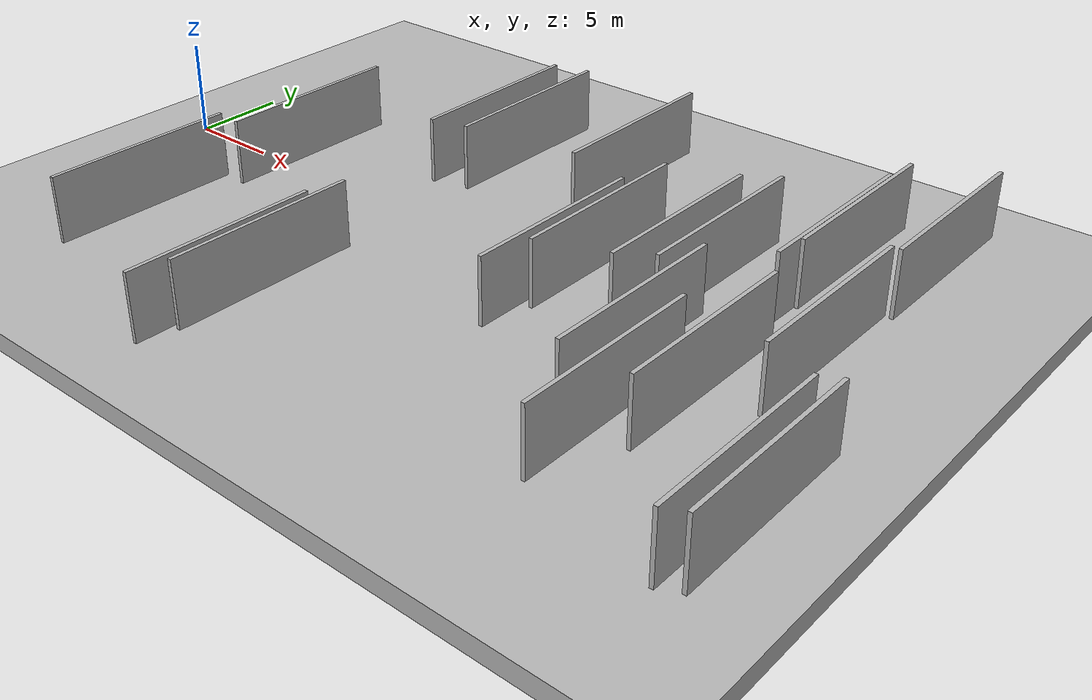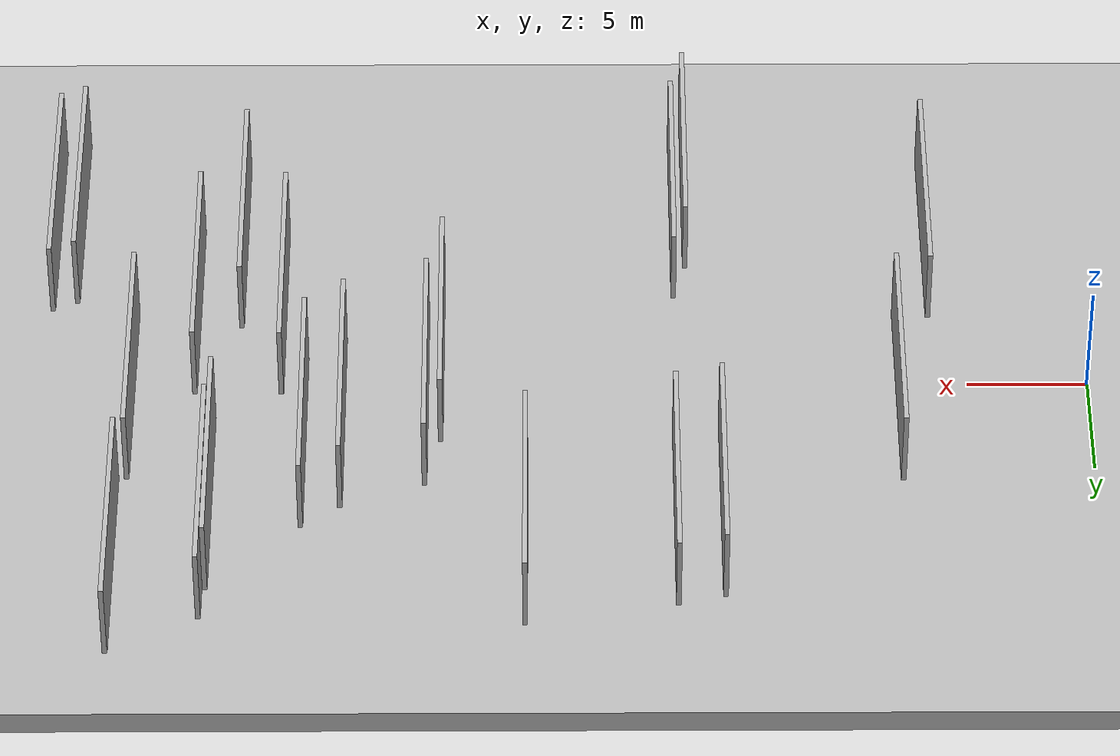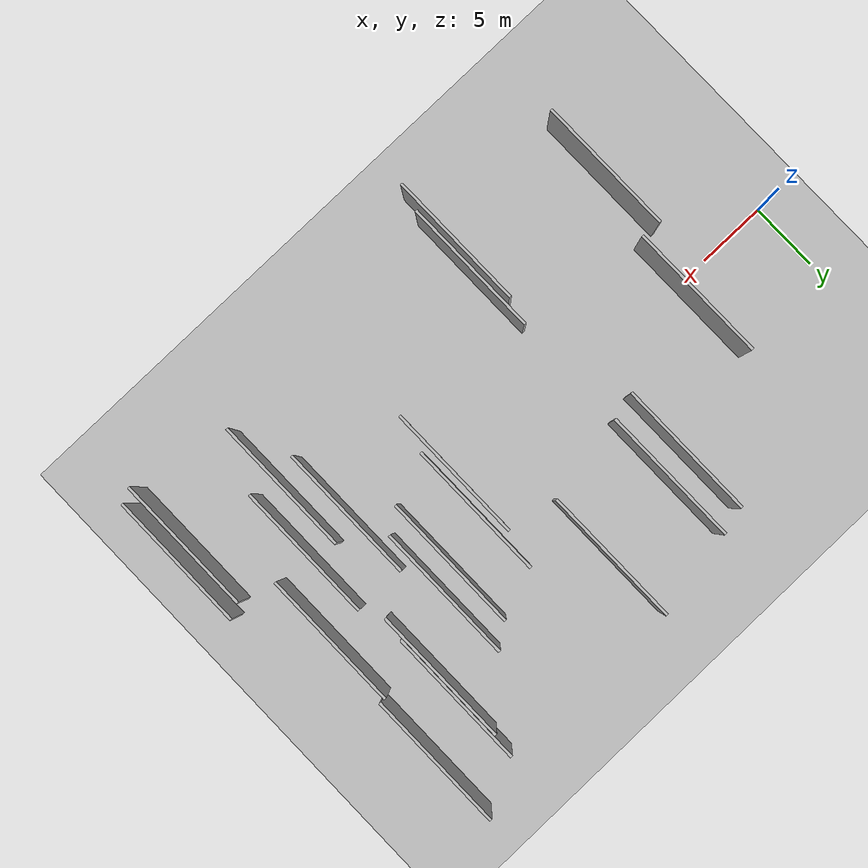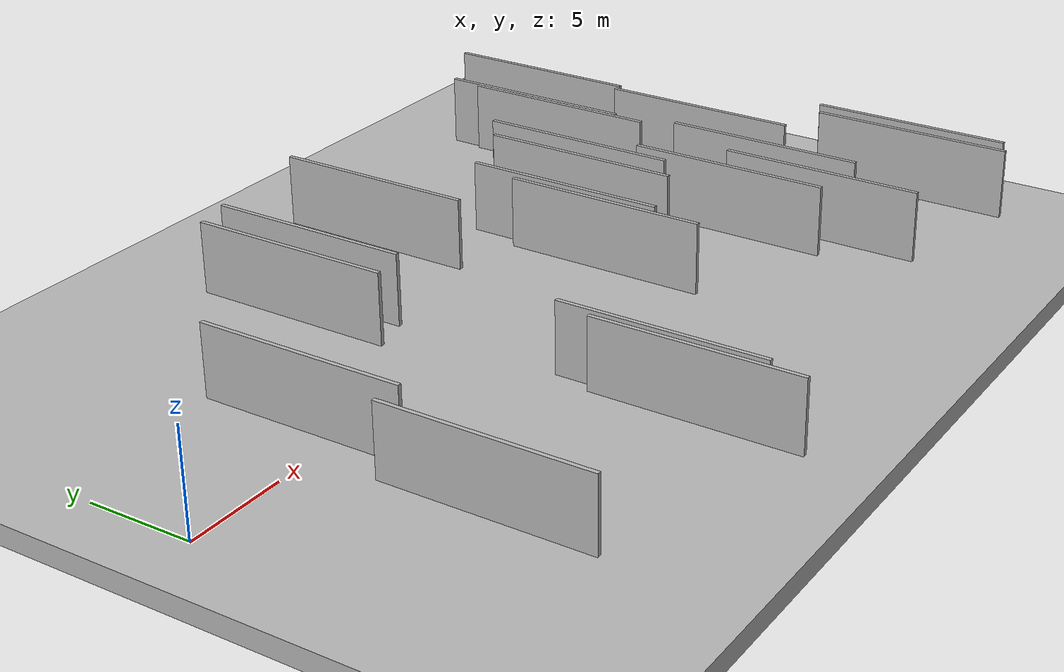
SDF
<?xml version="1.0" encoding="utf-8"?>

<sdf version="1.6">

   <world name="default">

      <gui fullscreen="0">

         <camera name="user_camera">

            <pose>-15 0 4.57585 0 0 0</pose>

            <view_controller>orbit</view_controller>

         </camera>

      </gui>

      <scene>

         <sky>

           <clouds>

             <speed>12</speed>

           </clouds>

         </sky>

         <ambient>0.4 0.4 0.4 1</ambient>

         <background>0.7 0.7 0.7 1</background>

         <shadows>1</shadows>

      </scene>

      <gravity>0 0 -9.8066</gravity>

      <magnetic_field>6e-06 2.3e-05 -4.2e-05</magnetic_field>

      <physics default="0" name="default_physics" type="ode">

         <ode>

            <solver>

               <type>quick</type>

               <iters>10</iters>

               <sor>1.0</sor>

               <use_dynamic_moi_rescaling>0</use_dynamic_moi_rescaling>

            </solver>

            <constraints>

               <cfm>0</cfm>

               <erp>0.2</erp>

               <contact_max_correcting_vel>100</contact_max_correcting_vel>

               <contact_surface_layer>0.001</contact_surface_layer>

            </constraints>

         </ode>

         <max_step_size>0.004</max_step_size>

         <real_time_factor>1</real_time_factor>

         <real_time_update_rate>250</real_time_update_rate>

      </physics>

      <light name="sun" type="directional">

         <cast_shadows>1</cast_shadows>

         <pose>0 0 10 0 0 0</pose>

         <diffuse>0.8 0.8 0.8 1</diffuse>

         <specular>0.2 0.2 0.2 1</specular>

         <attenuation>

            <range>1000</range>

            <constant>0.9</constant>

            <linear>0.01</linear>

            <quadratic>0.001</quadratic>

         </attenuation>

         <direction>-0.5 0.1 -0.9</direction>

      </light>

      <include>

         <name>ground_plane_1</name>

         <uri>model://HANNAS_ground_plane</uri>

         <pose>0 0 0  0 0 0</pose>

      </include>

      <include>

         <name>ground_plane_2</name>

         <uri>model://HANNAS_ground_plane</uri>

         <pose>100 0 0  0 0 0</pose>

      </include>

      <model name="HANNAS_wall_1">

         <static>1</static>

         <pose frame="">23.4221 9.4589 0.0 0.000000 0.000000 1.570796</pose>

         <link name="link">

            <pose frame="">0 0 2.00 0 0 0</pose>

            <collision name="collision">

               <geometry>

                  <box>

                     <size>10.00 0.2 4.00</size>

                  </box>

               </geometry>

               <max_contacts>10</max_contacts>

               <surface>

                  <contact>

                     <ode/>

                  </contact>

                  <bounce/>

                  <friction>

                     <torsional>

                        <ode/>

                     </torsional>

                     <ode/>

                  </friction>

               </surface>

            </collision>

            <visual name="visual">

               <cast_shadows>0</cast_shadows>

               <geometry>

                  <box>

                     <size>10.00 0.2 4.00</size>

                  </box>

               </geometry>

               <material>

                  <script>

                     <uri>model://HANNAS_wall/materials/scripts</uri>

                     <uri>model://HANNAS_wall/materials/textures</uri>

                     <name>vrc/HANNAS_wall</name>

                  </script>

               </material>

            </visual>

            <self_collide>0</self_collide>

            <enable_wind>0</enable_wind>

            <kinematic>0</kinematic>

         </link>

      </model>

      <model name="HANNAS_wall_2">

         <static>1</static>

         <pose frame="">32.5630 3.8398 0.0 0.000000 0.000000 1.570796</pose>

         <link name="link">

            <pose frame="">0 0 2.00 0 0 0</pose>

            <collision name="collision">

               <geometry>

                  <box>

                     <size>10.00 0.2 4.00</size>

                  </box>

               </geometry>

               <max_contacts>10</max_contacts>

               <surface>

                  <contact>

                     <ode/>

                  </contact>

                  <bounce/>

                  <friction>

                     <torsional>

                        <ode/>

                     </torsional>

                     <ode/>

                  </friction>

               </surface>

            </collision>

            <visual name="visual">

               <cast_shadows>0</cast_shadows>

               <geometry>

                  <box>

                     <size>10.00 0.2 4.00</size>

                  </box>

               </geometry>

               <material>

                  <script>

                     <uri>model://HANNAS_wall/materials/scripts</uri>

                     <uri>model://HANNAS_wall/materials/textures</uri>

                     <name>vrc/HANNAS_wall</name>

                  </script>

               </material>

            </visual>

            <self_collide>0</self_collide>

            <enable_wind>0</enable_wind>

            <kinematic>0</kinematic>

         </link>

      </model>

      <model name="HANNAS_wall_3">

         <static>1</static>

         <pose frame="">36.3139 7.4052 0.0 0.000000 0.000000 1.570796</pose>

         <link name="link">

            <pose frame="">0 0 2.00 0 0 0</pose>

            <collision name="collision">

               <geometry>

                  <box>

                     <size>10.00 0.2 4.00</size>

                  </box>

               </geometry>

               <max_contacts>10</max_contacts>

               <surface>

                  <contact>

                     <ode/>

                  </contact>

                  <bounce/>

                  <friction>

                     <torsional>

                        <ode/>

                     </torsional>

                     <ode/>

                  </friction>

               </surface>

            </collision>

            <visual name="visual">

               <cast_shadows>0</cast_shadows>

               <geometry>

                  <box>

                     <size>10.00 0.2 4.00</size>

                  </box>

               </geometry>

               <material>

                  <script>

                     <uri>model://HANNAS_wall/materials/scripts</uri>

                     <uri>model://HANNAS_wall/materials/textures</uri>

                     <name>vrc/HANNAS_wall</name>

                  </script>

               </material>

            </visual>

            <self_collide>0</self_collide>

            <enable_wind>0</enable_wind>

            <kinematic>0</kinematic>

         </link>

      </model>

      <model name="HANNAS_wall_4">

         <static>1</static>

         <pose frame="">16.6727 -11.7709 0.0 0.000000 0.000000 1.570796</pose>

         <link name="link">

            <pose frame="">0 0 2.00 0 0 0</pose>

            <collision name="collision">

               <geometry>

                  <box>

                     <size>10.00 0.2 4.00</size>

                  </box>

               </geometry>

               <max_contacts>10</max_contacts>

               <surface>

                  <contact>

                     <ode/>

                  </contact>

                  <bounce/>

                  <friction>

                     <torsional>

                        <ode/>

                     </torsional>

                     <ode/>

                  </friction>

               </surface>

            </collision>

            <visual name="visual">

               <cast_shadows>0</cast_shadows>

               <geometry>

                  <box>

                     <size>10.00 0.2 4.00</size>

                  </box>

               </geometry>

               <material>

                  <script>

                     <uri>model://HANNAS_wall/materials/scripts</uri>

                     <uri>model://HANNAS_wall/materials/textures</uri>

                     <name>vrc/HANNAS_wall</name>

                  </script>

               </material>

            </visual>

            <self_collide>0</self_collide>

            <enable_wind>0</enable_wind>

            <kinematic>0</kinematic>

         </link>

      </model>

      <model name="HANNAS_wall_5">

         <static>1</static>

         <pose frame="">42.3125 -9.6594 0.0 0.000000 0.000000 1.570796</pose>

         <link name="link">

            <pose frame="">0 0 2.00 0 0 0</pose>

            <collision name="collision">

               <geometry>

                  <box>

                     <size>10.00 0.2 4.00</size>

                  </box>

               </geometry>

               <max_contacts>10</max_contacts>

               <surface>

                  <contact>

                     <ode/>

                  </contact>

                  <bounce/>

                  <friction>

                     <torsional>

                        <ode/>

                     </torsional>

                     <ode/>

                  </friction>

               </surface>

            </collision>

            <visual name="visual">

               <cast_shadows>0</cast_shadows>

               <geometry>

                  <box>

                     <size>10.00 0.2 4.00</size>

                  </box>

               </geometry>

               <material>

                  <script>

                     <uri>model://HANNAS_wall/materials/scripts</uri>

                     <uri>model://HANNAS_wall/materials/textures</uri>

                     <name>vrc/HANNAS_wall</name>

                  </script>

               </material>

            </visual>

            <self_collide>0</self_collide>

            <enable_wind>0</enable_wind>

            <kinematic>0</kinematic>

         </link>

      </model>

      <model name="HANNAS_wall_6">

         <static>1</static>

         <pose frame="">40.1657 10.9871 0.0 0.000000 0.000000 1.570796</pose>

         <link name="link">

            <pose frame="">0 0 2.00 0 0 0</pose>

            <collision name="collision">

               <geometry>

                  <box>

                     <size>10.00 0.2 4.00</size>

                  </box>

               </geometry>

               <max_contacts>10</max_contacts>

               <surface>

                  <contact>

                     <ode/>

                  </contact>

                  <bounce/>

                  <friction>

                     <torsional>

                        <ode/>

                     </torsional>

                     <ode/>

                  </friction>

               </surface>

            </collision>

            <visual name="visual">

               <cast_shadows>0</cast_shadows>

               <geometry>

                  <box>

                     <size>10.00 0.2 4.00</size>

                  </box>

               </geometry>

               <material>

                  <script>

                     <uri>model://HANNAS_wall/materials/scripts</uri>

                     <uri>model://HANNAS_wall/materials/textures</uri>

                     <name>vrc/HANNAS_wall</name>

                  </script>

               </material>

            </visual>

            <self_collide>0</self_collide>

            <enable_wind>0</enable_wind>

            <kinematic>0</kinematic>

         </link>

      </model>

      <model name="HANNAS_wall_7">

         <static>1</static>

         <pose frame="">26.9151 -1.1675 0.0 0.000000 0.000000 1.570796</pose>

         <link name="link">

            <pose frame="">0 0 2.00 0 0 0</pose>

            <collision name="collision">

               <geometry>

                  <box>

                     <size>10.00 0.2 4.00</size>

                  </box>

               </geometry>

               <max_contacts>10</max_contacts>

               <surface>

                  <contact>

                     <ode/>

                  </contact>

                  <bounce/>

                  <friction>

                     <torsional>

                        <ode/>

                     </torsional>

                     <ode/>

                  </friction>

               </surface>

            </collision>

            <visual name="visual">

               <cast_shadows>0</cast_shadows>

               <geometry>

                  <box>

                     <size>10.00 0.2 4.00</size>

                  </box>

               </geometry>

               <material>

                  <script>

                     <uri>model://HANNAS_wall/materials/scripts</uri>

                     <uri>model://HANNAS_wall/materials/textures</uri>

                     <name>vrc/HANNAS_wall</name>

                  </script>

               </material>

            </visual>

            <self_collide>0</self_collide>

            <enable_wind>0</enable_wind>

            <kinematic>0</kinematic>

         </link>

      </model>

      <model name="HANNAS_wall_8">

         <static>1</static>

         <pose frame="">17.1875 -9.8897 0.0 0.000000 0.000000 1.570796</pose>

         <link name="link">

            <pose frame="">0 0 2.00 0 0 0</pose>

            <collision name="collision">

               <geometry>

                  <box>

                     <size>10.00 0.2 4.00</size>

                  </box>

               </geometry>

               <max_contacts>10</max_contacts>

               <surface>

                  <contact>

                     <ode/>

                  </contact>

                  <bounce/>

                  <friction>

                     <torsional>

                        <ode/>

                     </torsional>

                     <ode/>

                  </friction>

               </surface>

            </collision>

            <visual name="visual">

               <cast_shadows>0</cast_shadows>

               <geometry>

                  <box>

                     <size>10.00 0.2 4.00</size>

                  </box>

               </geometry>

               <material>

                  <script>

                     <uri>model://HANNAS_wall/materials/scripts</uri>

                     <uri>model://HANNAS_wall/materials/textures</uri>

                     <name>vrc/HANNAS_wall</name>

                  </script>

               </material>

            </visual>

            <self_collide>0</self_collide>

            <enable_wind>0</enable_wind>

            <kinematic>0</kinematic>

         </link>

      </model>

      <model name="HANNAS_wall_9">

         <static>1</static>

         <pose frame="">17.2578 8.3509 0.0 0.000000 0.000000 1.570796</pose>

         <link name="link">

            <pose frame="">0 0 2.00 0 0 0</pose>

            <collision name="collision">

               <geometry>

                  <box>

                     <size>10.00 0.2 4.00</size>

                  </box>

               </geometry>

               <max_contacts>10</max_contacts>

               <surface>

                  <contact>

                     <ode/>

                  </contact>

                  <bounce/>

                  <friction>

                     <torsional>

                        <ode/>

                     </torsional>

                     <ode/>

                  </friction>

               </surface>

            </collision>

            <visual name="visual">

               <cast_shadows>0</cast_shadows>

               <geometry>

                  <box>

                     <size>10.00 0.2 4.00</size>

                  </box>

               </geometry>

               <material>

                  <script>

                     <uri>model://HANNAS_wall/materials/scripts</uri>

                     <uri>model://HANNAS_wall/materials/textures</uri>

                     <name>vrc/HANNAS_wall</name>

                  </script>

               </material>

            </visual>

            <self_collide>0</self_collide>

            <enable_wind>0</enable_wind>

            <kinematic>0</kinematic>

         </link>

      </model>

      <model name="HANNAS_wall_10">

         <static>1</static>

         <pose frame="">6.5091 -8.6420 0.0 0.000000 0.000000 1.570796</pose>

         <link name="link">

            <pose frame="">0 0 2.00 0 0 0</pose>

            <collision name="collision">

               <geometry>

                  <box>

                     <size>10.00 0.2 4.00</size>

                  </box>

               </geometry>

               <max_contacts>10</max_contacts>

               <surface>

                  <contact>

                     <ode/>

                  </contact>

                  <bounce/>

                  <friction>

                     <torsional>

                        <ode/>

                     </torsional>

                     <ode/>

                  </friction>

               </surface>

            </collision>

            <visual name="visual">

               <cast_shadows>0</cast_shadows>

               <geometry>

                  <box>

                     <size>10.00 0.2 4.00</size>

                  </box>

               </geometry>

               <material>

                  <script>

                     <uri>model://HANNAS_wall/materials/scripts</uri>

                     <uri>model://HANNAS_wall/materials/textures</uri>

                     <name>vrc/HANNAS_wall</name>

                  </script>

               </material>

            </visual>

            <self_collide>0</self_collide>

            <enable_wind>0</enable_wind>

            <kinematic>0</kinematic>

         </link>

      </model>

      <model name="HANNAS_wall_11">

         <static>1</static>

         <pose frame="">15.3530 7.8726 0.0 0.000000 0.000000 1.570796</pose>

         <link name="link">

            <pose frame="">0 0 2.00 0 0 0</pose>

            <collision name="collision">

               <geometry>

                  <box>

                     <size>10.00 0.2 4.00</size>

                  </box>

               </geometry>

               <max_contacts>10</max_contacts>

               <surface>

                  <contact>

                     <ode/>

                  </contact>

                  <bounce/>

                  <friction>

                     <torsional>

                        <ode/>

                     </torsional>

                     <ode/>

                  </friction>

               </surface>

            </collision>

            <visual name="visual">

               <cast_shadows>0</cast_shadows>

               <geometry>

                  <box>

                     <size>10.00 0.2 4.00</size>

                  </box>

               </geometry>

               <material>

                  <script>

                     <uri>model://HANNAS_wall/materials/scripts</uri>

                     <uri>model://HANNAS_wall/materials/textures</uri>

                     <name>vrc/HANNAS_wall</name>

                  </script>

               </material>

            </visual>

            <self_collide>0</self_collide>

            <enable_wind>0</enable_wind>

            <kinematic>0</kinematic>

         </link>

      </model>

      <model name="HANNAS_wall_12">

         <static>1</static>

         <pose frame="">36.5261 9.0581 0.0 0.000000 0.000000 1.570796</pose>

         <link name="link">

            <pose frame="">0 0 2.00 0 0 0</pose>

            <collision name="collision">

               <geometry>

                  <box>

                     <size>10.00 0.2 4.00</size>

                  </box>

               </geometry>

               <max_contacts>10</max_contacts>

               <surface>

                  <contact>

                     <ode/>

                  </contact>

                  <bounce/>

                  <friction>

                     <torsional>

                        <ode/>

                     </torsional>

                     <ode/>

                  </friction>

               </surface>

            </collision>

            <visual name="visual">

               <cast_shadows>0</cast_shadows>

               <geometry>

                  <box>

                     <size>10.00 0.2 4.00</size>

                  </box>

               </geometry>

               <material>

                  <script>

                     <uri>model://HANNAS_wall/materials/scripts</uri>

                     <uri>model://HANNAS_wall/materials/textures</uri>

                     <name>vrc/HANNAS_wall</name>

                  </script>

               </material>

            </visual>

            <self_collide>0</self_collide>

            <enable_wind>0</enable_wind>

            <kinematic>0</kinematic>

         </link>

      </model>

      <model name="HANNAS_wall_13">

         <static>1</static>

         <pose frame="">27.5452 1.4275 0.0 0.000000 0.000000 1.570796</pose>

         <link name="link">

            <pose frame="">0 0 2.00 0 0 0</pose>

            <collision name="collision">

               <geometry>

                  <box>

                     <size>10.00 0.2 4.00</size>

                  </box>

               </geometry>

               <max_contacts>10</max_contacts>

               <surface>

                  <contact>

                     <ode/>

                  </contact>

                  <bounce/>

                  <friction>

                     <torsional>

                        <ode/>

                     </torsional>

                     <ode/>

                  </friction>

               </surface>

            </collision>

            <visual name="visual">

               <cast_shadows>0</cast_shadows>

               <geometry>

                  <box>

                     <size>10.00 0.2 4.00</size>

                  </box>

               </geometry>

               <material>

                  <script>

                     <uri>model://HANNAS_wall/materials/scripts</uri>

                     <uri>model://HANNAS_wall/materials/textures</uri>

                     <name>vrc/HANNAS_wall</name>

                  </script>

               </material>

            </visual>

            <self_collide>0</self_collide>

            <enable_wind>0</enable_wind>

            <kinematic>0</kinematic>

         </link>

      </model>

      <model name="HANNAS_wall_14">

         <static>1</static>

         <pose frame="">33.5602 -4.0290 0.0 0.000000 0.000000 1.570796</pose>

         <link name="link">

            <pose frame="">0 0 2.00 0 0 0</pose>

            <collision name="collision">

               <geometry>

                  <box>

                     <size>10.00 0.2 4.00</size>

                  </box>

               </geometry>

               <max_contacts>10</max_contacts>

               <surface>

                  <contact>

                     <ode/>

                  </contact>

                  <bounce/>

                  <friction>

                     <torsional>

                        <ode/>

                     </torsional>

                     <ode/>

                  </friction>

               </surface>

            </collision>

            <visual name="visual">

               <cast_shadows>0</cast_shadows>

               <geometry>

                  <box>

                     <size>10.00 0.2 4.00</size>

                  </box>

               </geometry>

               <material>

                  <script>

                     <uri>model://HANNAS_wall/materials/scripts</uri>

                     <uri>model://HANNAS_wall/materials/textures</uri>

                     <name>vrc/HANNAS_wall</name>

                  </script>

               </material>

            </visual>

            <self_collide>0</self_collide>

            <enable_wind>0</enable_wind>

            <kinematic>0</kinematic>

         </link>

      </model>

      <model name="HANNAS_wall_15">

         <static>1</static>

         <pose frame="">43.3201 -9.1807 0.0 0.000000 0.000000 1.570796</pose>

         <link name="link">

            <pose frame="">0 0 2.00 0 0 0</pose>

            <collision name="collision">

               <geometry>

                  <box>

                     <size>10.00 0.2 4.00</size>

                  </box>

               </geometry>

               <max_contacts>10</max_contacts>

               <surface>

                  <contact>

                     <ode/>

                  </contact>

                  <bounce/>

                  <friction>

                     <torsional>

                        <ode/>

                     </torsional>

                     <ode/>

                  </friction>

               </surface>

            </collision>

            <visual name="visual">

               <cast_shadows>0</cast_shadows>

               <geometry>

                  <box>

                     <size>10.00 0.2 4.00</size>

                  </box>

               </geometry>

               <material>

                  <script>

                     <uri>model://HANNAS_wall/materials/scripts</uri>

                     <uri>model://HANNAS_wall/materials/textures</uri>

                     <name>vrc/HANNAS_wall</name>

                  </script>

               </material>

            </visual>

            <self_collide>0</self_collide>

            <enable_wind>0</enable_wind>

            <kinematic>0</kinematic>

         </link>

      </model>

      <model name="HANNAS_wall_16">

         <static>1</static>

         <pose frame="">37.1514 -4.0819 0.0 0.000000 0.000000 1.570796</pose>

         <link name="link">

            <pose frame="">0 0 2.00 0 0 0</pose>

            <collision name="collision">

               <geometry>

                  <box>

                     <size>10.00 0.2 4.00</size>

                  </box>

               </geometry>

               <max_contacts>10</max_contacts>

               <surface>

                  <contact>

                     <ode/>

                  </contact>

                  <bounce/>

                  <friction>

                     <torsional>

                        <ode/>

                     </torsional>

                     <ode/>

                  </friction>

               </surface>

            </collision>

            <visual name="visual">

               <cast_shadows>0</cast_shadows>

               <geometry>

                  <box>

                     <size>10.00 0.2 4.00</size>

                  </box>

               </geometry>

               <material>

                  <script>

                     <uri>model://HANNAS_wall/materials/scripts</uri>

                     <uri>model://HANNAS_wall/materials/textures</uri>

                     <name>vrc/HANNAS_wall</name>

                  </script>

               </material>

            </visual>

            <self_collide>0</self_collide>

            <enable_wind>0</enable_wind>

            <kinematic>0</kinematic>

         </link>

      </model>

      <model name="HANNAS_wall_17">

         <static>1</static>

         <pose frame="">7.9268 1.1882 0.0 0.000000 0.000000 1.570796</pose>

         <link name="link">

            <pose frame="">0 0 2.00 0 0 0</pose>

            <collision name="collision">

               <geometry>

                  <box>

                     <size>10.00 0.2 4.00</size>

                  </box>

               </geometry>

               <max_contacts>10</max_contacts>

               <surface>

                  <contact>

                     <ode/>

                  </contact>

                  <bounce/>

                  <friction>

                     <torsional>

                        <ode/>

                     </torsional>

                     <ode/>

                  </friction>

               </surface>

            </collision>

            <visual name="visual">

               <cast_shadows>0</cast_shadows>

               <geometry>

                  <box>

                     <size>10.00 0.2 4.00</size>

                  </box>

               </geometry>

               <material>

                  <script>

                     <uri>model://HANNAS_wall/materials/scripts</uri>

                     <uri>model://HANNAS_wall/materials/textures</uri>

                     <name>vrc/HANNAS_wall</name>

                  </script>

               </material>

            </visual>

            <self_collide>0</self_collide>

            <enable_wind>0</enable_wind>

            <kinematic>0</kinematic>

         </link>

      </model>

      <model name="HANNAS_wall_18">

         <static>1</static>

         <pose frame="">30.9820 2.7147 0.0 0.000000 0.000000 1.570796</pose>

         <link name="link">

            <pose frame="">0 0 2.00 0 0 0</pose>

            <collision name="collision">

               <geometry>

                  <box>

                     <size>10.00 0.2 4.00</size>

                  </box>

               </geometry>

               <max_contacts>10</max_contacts>

               <surface>

                  <contact>

                     <ode/>

                  </contact>

                  <bounce/>

                  <friction>

                     <torsional>

                        <ode/>

                     </torsional>

                     <ode/>

                  </friction>

               </surface>

            </collision>

            <visual name="visual">

               <cast_shadows>0</cast_shadows>

               <geometry>

                  <box>

                     <size>10.00 0.2 4.00</size>

                  </box>

               </geometry>

               <material>

                  <script>

                     <uri>model://HANNAS_wall/materials/scripts</uri>

                     <uri>model://HANNAS_wall/materials/textures</uri>

                     <name>vrc/HANNAS_wall</name>

                  </script>

               </material>

            </visual>

            <self_collide>0</self_collide>

            <enable_wind>0</enable_wind>

            <kinematic>0</kinematic>

         </link>

      </model>

      <model name="HANNAS_wall_19">

         <static>1</static>

         <pose frame="">35.3307 -8.0970 0.0 0.000000 0.000000 1.570796</pose>

         <link name="link">

            <pose frame="">0 0 2.00 0 0 0</pose>

            <collision name="collision">

               <geometry>

                  <box>

                     <size>10.00 0.2 4.00</size>

                  </box>

               </geometry>

               <max_contacts>10</max_contacts>

               <surface>

                  <contact>

                     <ode/>

                  </contact>

                  <bounce/>

                  <friction>

                     <torsional>

                        <ode/>

                     </torsional>

                     <ode/>

                  </friction>

               </surface>

            </collision>

            <visual name="visual">

               <cast_shadows>0</cast_shadows>

               <geometry>

                  <box>

                     <size>10.00 0.2 4.00</size>

                  </box>

               </geometry>

               <material>

                  <script>

                     <uri>model://HANNAS_wall/materials/scripts</uri>

                     <uri>model://HANNAS_wall/materials/textures</uri>

                     <name>vrc/HANNAS_wall</name>

                  </script>

               </material>

            </visual>

            <self_collide>0</self_collide>

            <enable_wind>0</enable_wind>

            <kinematic>0</kinematic>

         </link>

      </model>

      <model name="HANNAS_wall_20">

         <static>1</static>

         <pose frame="">39.7499 1.0247 0.0 0.000000 0.000000 1.570796</pose>

         <link name="link">

            <pose frame="">0 0 2.00 0 0 0</pose>

            <collision name="collision">

               <geometry>

                  <box>

                     <size>10.00 0.2 4.00</size>

                  </box>

               </geometry>

               <max_contacts>10</max_contacts>

               <surface>

                  <contact>

                     <ode/>

                  </contact>

                  <bounce/>

                  <friction>

                     <torsional>

                        <ode/>

                     </torsional>

                     <ode/>

                  </friction>

               </surface>

            </collision>

            <visual name="visual">

               <cast_shadows>0</cast_shadows>

               <geometry>

                  <box>

                     <size>10.00 0.2 4.00</size>

                  </box>

               </geometry>

               <material>

                  <script>

                     <uri>model://HANNAS_wall/materials/scripts</uri>

                     <uri>model://HANNAS_wall/materials/textures</uri>

                     <name>vrc/HANNAS_wall</name>

                  </script>

               </material>

            </visual>

            <self_collide>0</self_collide>

            <enable_wind>0</enable_wind>

            <kinematic>0</kinematic>

         </link>

      </model>

   </world>

</sdf>

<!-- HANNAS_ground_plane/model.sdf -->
<sdf version="1.4">
<model name="HANNAS_ground_plane">
  <static>true</static>
    <link name="link">
      <collision name="collision">
        <geometry>
          <plane>
            <normal>0 0 1</normal>
            <size>1000 1000</size>
          </plane>
        </geometry>
        <surface>
          <friction>
            <ode>
              <mu>100</mu>
              <mu2>50</mu2>
            </ode>
          </friction>
        </surface>
      </collision>
      <visual name="visual">
        <cast_shadows>false</cast_shadows>
        <geometry>
          <plane>
            <normal>0 0 1</normal>
            <size>1000 1000</size>
          </plane>
        </geometry>
        <material>
          <script>
            <uri>model://HANNAS_ground_plane/materials/scripts/HANNAS_ground_plane.material</uri>
	    <uri>model://HANNAS_ground_plane/materials/textures</uri>
            <name>HANNASGroundPlane/Image</name>
          </script>
        </material>
      </visual>
    </link>
  </model>
</sdf>
